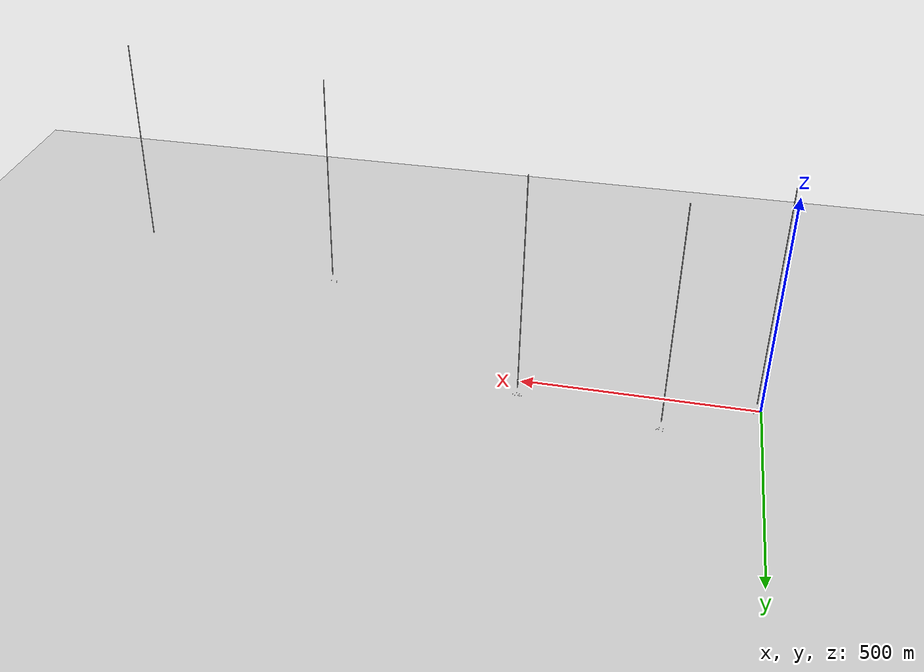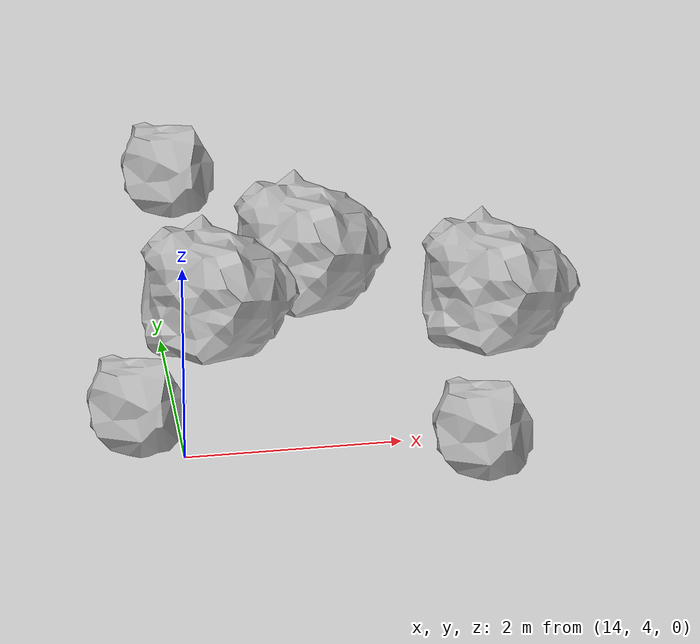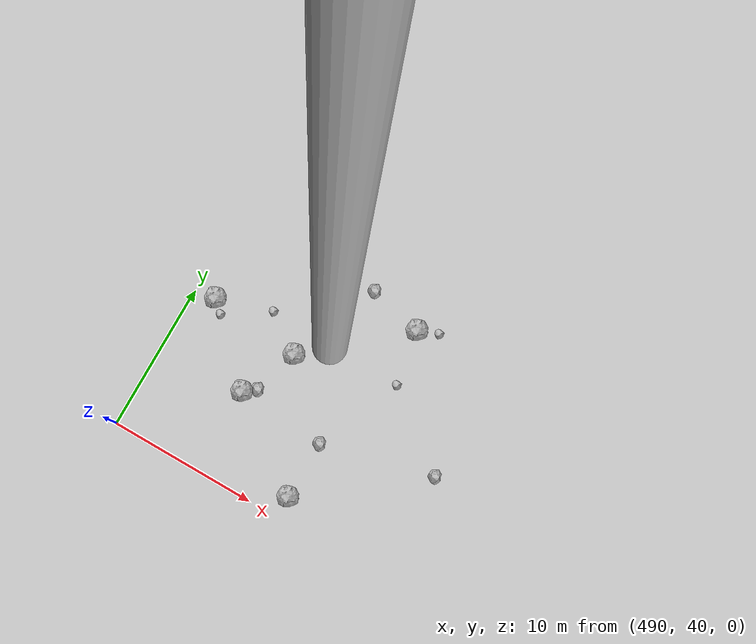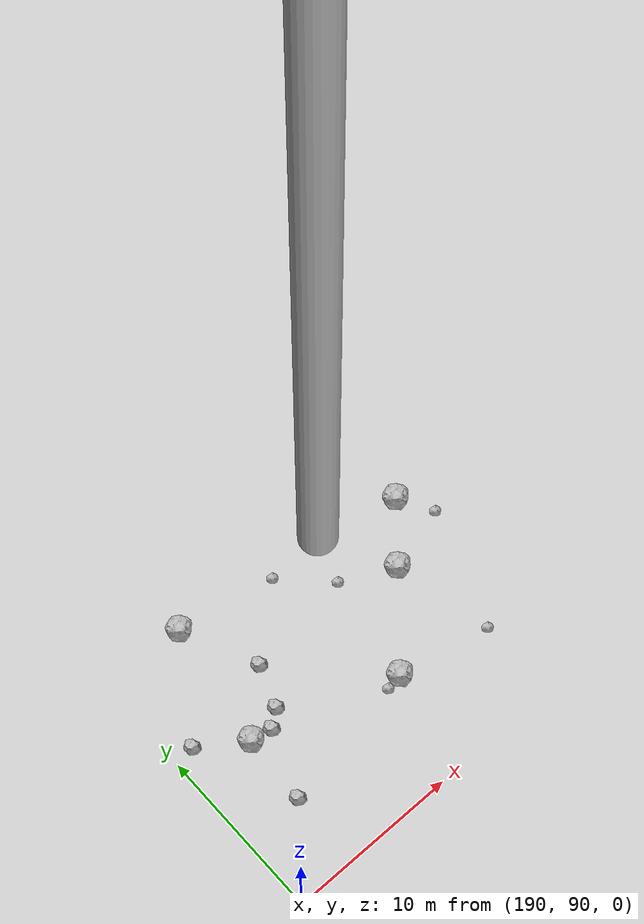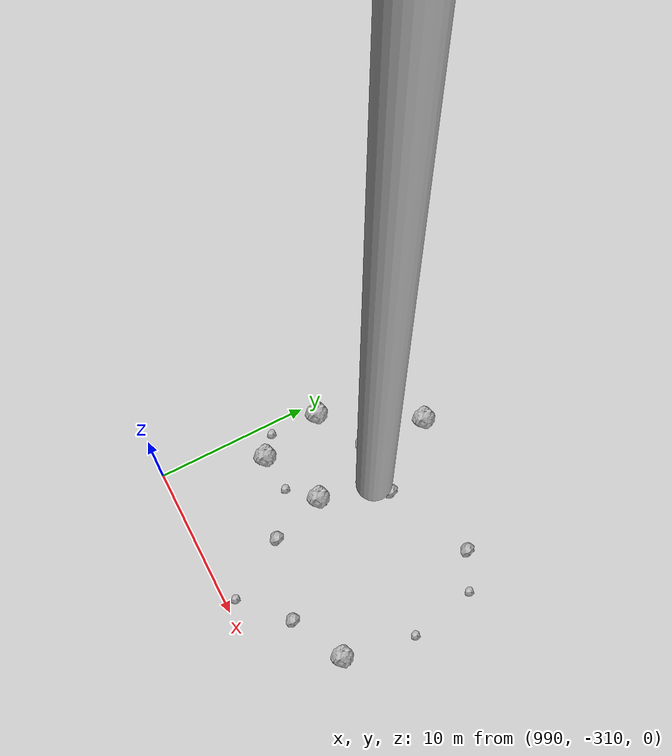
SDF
<?xml version="1.0" ?>
<sdf version="1.6">
  <world name="default">

    <include>
      <uri>model://custom_ground</uri>
    </include>

    <include>
      <uri>model://sun</uri>
    </include>

    <spherical_coordinates>
      <surface_model>EARTH_WGS84</surface_model>
      <latitude_deg>38.161479</latitude_deg>
      <longitude_deg>-122.454630</longitude_deg>
      <elevation>488.0</elevation>
      <heading_deg>90</heading_deg>
    </spherical_coordinates>

    <model name="rock1_0_0">
      <include>
        <uri>model://rock1</uri>
        <pose>15.525276351233337 6.610345197784049 0.5 0 0 0</pose>
      </include>
    </model>
    <model name="rock1_0_1">
      <include>
        <uri>model://rock1</uri>
        <pose>7.889307396194239 1.6535101761001503 0.5 0 0 0</pose>
      </include>
    </model>
    <model name="rock1_0_2">
      <include>
        <uri>model://rock1</uri>
        <pose>14.557500810803068 5.900128451390657 0.5 0 0 0</pose>
      </include>
    </model>
    <model name="rock1_0_3">
      <include>
        <uri>model://rock1</uri>
        <pose>4.454841044958093 -5.460273262258662 0.5 0 0 0</pose>
      </include>
    </model>
    <model name="rock1_0_4">
      <include>
        <uri>model://rock1</uri>
        <pose>17.189204019533292 5.696207732437664 0.5 0 0 0</pose>
      </include>
    </model>
    <model name="rock2_0_0">
      <include>
        <uri>model://rock2</uri>
        <pose>9.817750892629286 9.285022342875518 0.3 0 0 0</pose>
      </include>
    </model>
    <model name="rock2_0_1">
      <include>
        <uri>model://rock2</uri>
        <pose>14.376230154048091 8.692480028334117 0.3 0 0 0</pose>
      </include>
    </model>
    <model name="rock2_0_2">
      <include>
        <uri>model://rock2</uri>
        <pose>16.699914967752637 3.6950039231054426 0.3 0 0 0</pose>
      </include>
    </model>
    <model name="rock2_0_3">
      <include>
        <uri>model://rock2</uri>
        <pose>13.614076206944487 4.498259679579949 0.3 0 0 0</pose>
      </include>
    </model>
    <model name="rock2_0_4">
      <include>
        <uri>model://rock2</uri>
        <pose>17.242167178002994 -1.7131647837348059 0.3 0 0 0</pose>
      </include>
    </model>
    <model name="rock3_0_0">
      <include>
        <uri>model://rock3</uri>
        <pose>17.054093052975464 -2.718595696089217 0.2 0 0 0</pose>
      </include>
    </model>
    <model name="rock3_0_1">
      <include>
        <uri>model://rock3</uri>
        <pose>9.479524167503593 -5.650361893571459 0.2 0 0 0</pose>
      </include>
    </model>
    <model name="rock3_0_2">
      <include>
        <uri>model://rock3</uri>
        <pose>15.119453489097719 -4.876221867334567 0.2 0 0 0</pose>
      </include>
    </model>
    <model name="rock3_0_3">
      <include>
        <uri>model://rock3</uri>
        <pose>14.62213803138937 -0.583657245392109 0.2 0 0 0</pose>
      </include>
    </model>
    <model name="rock3_0_4">
      <include>
        <uri>model://rock3</uri>
        <pose>18.039579138454062 -2.8834141361477217 0.2 0 0 0</pose>
      </include>
    </model>
    <model name="rock1_1_0">
      <include>
        <uri>model://rock1</uri>
        <pose>208.76339692320553 103.46023592475406 0.5 0 0 0</pose>
      </include>
    </model>
    <model name="rock1_1_1">
      <include>
        <uri>model://rock1</uri>
        <pose>193.86676708528518 98.44292971892227 0.5 0 0 0</pose>
      </include>
    </model>
    <model name="rock1_1_2">
      <include>
        <uri>model://rock1</uri>
        <pose>194.98528299058512 105.64404735408536 0.5 0 0 0</pose>
      </include>
    </model>
    <model name="rock1_1_3">
      <include>
        <uri>model://rock1</uri>
        <pose>202.25160231282268 95.8726973716056 0.5 0 0 0</pose>
      </include>
    </model>
    <model name="rock1_1_4">
      <include>
        <uri>model://rock1</uri>
        <pose>206.22876945398832 100.48626914817561 0.5 0 0 0</pose>
      </include>
    </model>
    <model name="rock2_1_0">
      <include>
        <uri>model://rock2</uri>
        <pose>195.07191141554708 98.21325764203668 0.3 0 0 0</pose>
      </include>
    </model>
    <model name="rock2_1_1">
      <include>
        <uri>model://rock2</uri>
        <pose>193.61341773403993 94.43996336748611 0.3 0 0 0</pose>
      </include>
    </model>
    <model name="rock2_1_2">
      <include>
        <uri>model://rock2</uri>
        <pose>191.21346118579083 100.25042409814026 0.3 0 0 0</pose>
      </include>
    </model>
    <model name="rock2_1_3">
      <include>
        <uri>model://rock2</uri>
        <pose>196.01530567885067 98.94784353912632 0.3 0 0 0</pose>
      </include>
    </model>
    <model name="rock2_1_4">
      <include>
        <uri>model://rock2</uri>
        <pose>196.90468364780804 101.326890457727 0.3 0 0 0</pose>
      </include>
    </model>
    <model name="rock3_1_0">
      <include>
        <uri>model://rock3</uri>
        <pose>209.84783639516792 101.47365905441023 0.2 0 0 0</pose>
      </include>
    </model>
    <model name="rock3_1_1">
      <include>
        <uri>model://rock3</uri>
        <pose>203.15562408094218 101.96277792138895 0.2 0 0 0</pose>
      </include>
    </model>
    <model name="rock3_1_2">
      <include>
        <uri>model://rock3</uri>
        <pose>207.5244003804073 94.6740561443311 0.2 0 0 0</pose>
      </include>
    </model>
    <model name="rock3_1_3">
      <include>
        <uri>model://rock3</uri>
        <pose>201.22201815068615 95.6933756973475 0.2 0 0 0</pose>
      </include>
    </model>
    <model name="rock3_1_4">
      <include>
        <uri>model://rock3</uri>
        <pose>200.6342635997246 104.48315721822024 0.2 0 0 0</pose>
      </include>
    </model>
    <model name="rock1_2_0">
      <include>
        <uri>model://rock1</uri>
        <pose>495.96605698251506 45.907848134949276 0.5 0 0 0</pose>
      </include>
    </model>
    <model name="rock1_2_1">
      <include>
        <uri>model://rock1</uri>
        <pose>491.41394032007594 50.242638315654084 0.5 0 0 0</pose>
      </include>
    </model>
    <model name="rock1_2_2">
      <include>
        <uri>model://rock1</uri>
        <pose>503.7368469821653 55.06568092018414 0.5 0 0 0</pose>
      </include>
    </model>
    <model name="rock1_2_3">
      <include>
        <uri>model://rock1</uri>
        <pose>501.9957374038247 41.557806295689254 0.5 0 0 0</pose>
      </include>
    </model>
    <model name="rock1_2_4">
      <include>
        <uri>model://rock1</uri>
        <pose>497.6627395220357 49.67971401236371 0.5 0 0 0</pose>
      </include>
    </model>
    <model name="rock2_2_0">
      <include>
        <uri>model://rock2</uri>
        <pose>500.06105518421543 55.88830272456712 0.3 0 0 0</pose>
      </include>
    </model>
    <model name="rock2_2_1">
      <include>
        <uri>model://rock2</uri>
        <pose>501.9968858241438 45.530263465623726 0.3 0 0 0</pose>
      </include>
    </model>
    <model name="rock2_2_2">
      <include>
        <uri>model://rock2</uri>
        <pose>496.37086093994316 56.448164803041266 0.3 0 0 0</pose>
      </include>
    </model>
    <model name="rock2_2_3">
      <include>
        <uri>model://rock2</uri>
        <pose>496.75866859002167 46.530035043195284 0.3 0 0 0</pose>
      </include>
    </model>
    <model name="rock2_2_4">
      <include>
        <uri>model://rock2</uri>
        <pose>509.5064246247215 47.495897353208164 0.3 0 0 0</pose>
      </include>
    </model>
    <model name="rock3_2_0">
      <include>
        <uri>model://rock3</uri>
        <pose>495.0587670893363 51.385526356437325 0.2 0 0 0</pose>
      </include>
    </model>
    <model name="rock3_2_1">
      <include>
        <uri>model://rock3</uri>
        <pose>492.17703769603594 49.477065175995975 0.2 0 0 0</pose>
      </include>
    </model>
    <model name="rock3_2_2">
      <include>
        <uri>model://rock3</uri>
        <pose>499.96007906779573 55.960815477668156 0.2 0 0 0</pose>
      </include>
    </model>
    <model name="rock3_2_3">
      <include>
        <uri>model://rock3</uri>
        <pose>504.3752391402531 51.31854571479559 0.2 0 0 0</pose>
      </include>
    </model>
    <model name="rock3_2_4">
      <include>
        <uri>model://rock3</uri>
        <pose>505.07016742178814 55.58313805498231 0.2 0 0 0</pose>
      </include>
    </model>
    <model name="rock1_3_0">
      <include>
        <uri>model://rock1</uri>
        <pose>1005.8306832552398 -304.8168909426483 0.5 0 0 0</pose>
      </include>
    </model>
    <model name="rock1_3_1">
      <include>
        <uri>model://rock1</uri>
        <pose>990.8153730043484 -299.22228596097113 0.5 0 0 0</pose>
      </include>
    </model>
    <model name="rock1_3_2">
      <include>
        <uri>model://rock1</uri>
        <pose>995.8923444994103 -301.6007424113343 0.5 0 0 0</pose>
      </include>
    </model>
    <model name="rock1_3_3">
      <include>
        <uri>model://rock1</uri>
        <pose>994.2325438269559 -293.08572051920873 0.5 0 0 0</pose>
      </include>
    </model>
    <model name="rock1_3_4">
      <include>
        <uri>model://rock1</uri>
        <pose>991.8870552959357 -303.50362182003045 0.5 0 0 0</pose>
      </include>
    </model>
    <model name="rock2_3_0">
      <include>
        <uri>model://rock2</uri>
        <pose>1003.1989931664608 -294.49921462270055 0.3 0 0 0</pose>
      </include>
    </model>
    <model name="rock2_3_1">
      <include>
        <uri>model://rock2</uri>
        <pose>997.0280672012798 -305.18989767455435 0.3 0 0 0</pose>
      </include>
    </model>
    <model name="rock2_3_2">
      <include>
        <uri>model://rock2</uri>
        <pose>993.8614751580517 -297.4382777927702 0.3 0 0 0</pose>
      </include>
    </model>
    <model name="rock2_3_3">
      <include>
        <uri>model://rock2</uri>
        <pose>1002.2541855772256 -306.60148533129893 0.3 0 0 0</pose>
      </include>
    </model>
    <model name="rock2_3_4">
      <include>
        <uri>model://rock2</uri>
        <pose>997.5369292908265 -297.1838253220841 0.3 0 0 0</pose>
      </include>
    </model>
    <model name="rock3_3_0">
      <include>
        <uri>model://rock3</uri>
        <pose>1006.6453259773523 -300.02164212351505 0.2 0 0 0</pose>
      </include>
    </model>
    <model name="rock3_3_1">
      <include>
        <uri>model://rock3</uri>
        <pose>990.6668300612165 -302.47488434459115 0.2 0 0 0</pose>
      </include>
    </model>
    <model name="rock3_3_2">
      <include>
        <uri>model://rock3</uri>
        <pose>1005.676445174357 -295.6498563156597 0.2 0 0 0</pose>
      </include>
    </model>
    <model name="rock3_3_3">
      <include>
        <uri>model://rock3</uri>
        <pose>994.3598990120688 -303.2842492813833 0.2 0 0 0</pose>
      </include>
    </model>
    <model name="rock3_3_4">
      <include>
        <uri>model://rock3</uri>
        <pose>999.410995677815 -309.32341056009017 0.2 0 0 0</pose>
      </include>
    </model>
    <model name="rock1_4_0">
      <include>
        <uri>model://rock1</uri>
        <pose>1500.814382338392 -391.6840313706021 0.5 0 0 0</pose>
      </include>
    </model>
    <model name="rock1_4_1">
      <include>
        <uri>model://rock1</uri>
        <pose>1506.989941951976 -400.3285190519127 0.5 0 0 0</pose>
      </include>
    </model>
    <model name="rock1_4_2">
      <include>
        <uri>model://rock1</uri>
        <pose>1500.6024706643273 -391.06416376830254 0.5 0 0 0</pose>
      </include>
    </model>
    <model name="rock1_4_3">
      <include>
        <uri>model://rock1</uri>
        <pose>1496.7365277751037 -403.13906083531026 0.5 0 0 0</pose>
      </include>
    </model>
    <model name="rock1_4_4">
      <include>
        <uri>model://rock1</uri>
        <pose>1505.4173267426295 -398.1908137041913 0.5 0 0 0</pose>
      </include>
    </model>
    <model name="rock2_4_0">
      <include>
        <uri>model://rock2</uri>
        <pose>1504.9286808061238 -400.2671972650418 0.3 0 0 0</pose>
      </include>
    </model>
    <model name="rock2_4_1">
      <include>
        <uri>model://rock2</uri>
        <pose>1497.0187586477366 -408.8479563946773 0.3 0 0 0</pose>
      </include>
    </model>
    <model name="rock2_4_2">
      <include>
        <uri>model://rock2</uri>
        <pose>1503.3272927660898 -403.99555655291397 0.3 0 0 0</pose>
      </include>
    </model>
    <model name="rock2_4_3">
      <include>
        <uri>model://rock2</uri>
        <pose>1501.386927641655 -393.1479635811754 0.3 0 0 0</pose>
      </include>
    </model>
    <model name="rock2_4_4">
      <include>
        <uri>model://rock2</uri>
        <pose>1500.717697599203 -391.8402421825365 0.3 0 0 0</pose>
      </include>
    </model>
    <model name="rock3_4_0">
      <include>
        <uri>model://rock3</uri>
        <pose>1497.0648414388543 -402.7130484669626 0.2 0 0 0</pose>
      </include>
    </model>
    <model name="rock3_4_1">
      <include>
        <uri>model://rock3</uri>
        <pose>1500.9065578723737 -396.76313539958284 0.2 0 0 0</pose>
      </include>
    </model>
    <model name="rock3_4_2">
      <include>
        <uri>model://rock3</uri>
        <pose>1497.977606344156 -401.99189184688987 0.2 0 0 0</pose>
      </include>
    </model>
    <model name="rock3_4_3">
      <include>
        <uri>model://rock3</uri>
        <pose>1499.0344010561732 -395.6047169049784 0.2 0 0 0</pose>
      </include>
    </model>
    <model name="rock3_4_4">
      <include>
        <uri>model://rock3</uri>
        <pose>1492.3465884707973 -397.90117393613843 0.2 0 0 0</pose>
      </include>
    </model>

    <model name="cylinder_1">
      <static>true</static>
      <link name="link">
        <visual name="visual">
          <geometry>
            <cylinder>
              <radius>1</radius>
              <length>500</length>
            </cylinder>
          </geometry>
        </visual>
      </link>
      <pose>10 0 270 0 0 0</pose>
    </model>

    <model name="cylinder_2">
      <static>true</static>
      <link name="link">
        <visual name="visual">
          <geometry>
            <cylinder>
              <radius>1</radius>
              <length>500</length>
            </cylinder>
          </geometry>
        </visual>
      </link>
      <pose>200 100 270 0 0 0</pose>
    </model>

    <model name="cylinder_3">
      <static>true</static>
      <link name="link">
        <visual name="visual">
          <geometry>
            <cylinder>
              <radius>1</radius>
              <length>500</length>
            </cylinder>
          </geometry>
        </visual>
      </link>
      <pose>500 50 270 0 0 0</pose>
    </model>

    <model name="cylinder_4">
      <static>true</static>
      <link name="link">
        <visual name="visual">
          <geometry>
            <cylinder>
              <radius>1</radius>
              <length>500</length>
            </cylinder>
          </geometry>
        </visual>
      </link>
      <pose>1000 -300 270 0 0 0</pose>
    </model>

    <model name="cylinder_5">
      <static>true</static>
      <link name="link">
        <visual name="visual">
          <geometry>
            <cylinder>
              <radius>1</radius>
              <length>500</length>
            </cylinder>
          </geometry>
        </visual>
      </link>
      <pose>1500 -400 270 0 0 0</pose>
    </model>

  </world>
</sdf>

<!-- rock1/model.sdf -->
<sdf version="1.6">
  <model name="rock1">
    <static>true</static> <!-- Set to true if the model should not move -->
    <pose>0 0 0 0 0 0</pose>

    <!--z offset is 0.5 for full scale-->

    <link name="link">
      <collision name="rock1_collision">
        <geometry>
          <mesh>
            <uri>model://meshes/rock1.dae</uri>
          </mesh>
        </geometry>
      </collision>
      <visual name="rock1_visual">
        <geometry>
          <mesh>
            <uri>model://meshes/rock1.dae</uri>
          </mesh>
        </geometry>
        <material>
          <script>
            <uri>model://materials/scripts/sand_pebbles.material</uri>
            <name>custom_ground/Image</name>
          </script>
        </material>
      </visual>
    </link>
  </model>
</sdf>

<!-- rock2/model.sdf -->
<sdf version="1.6">
  <model name="rock2">
    <static>true</static> <!-- Set to true if the model should not move -->
    <pose>0 0 0 0 0 0</pose>

    <!--z offset is 0.3 for full scale-->

    <link name="link">
      <collision name="rock2_collision">
        <geometry>
          <mesh>
            <uri>model://meshes/rock2.dae</uri>
          </mesh>
        </geometry>
      </collision>
      <visual name="rock2_visual">
        <geometry>
          <mesh>
            <uri>model://meshes/rock2.dae</uri>
          </mesh>
        </geometry>
        <material>
          <script>
            <uri>model://materials/scripts/sand_pebbles.material</uri>
            <name>custom_ground/Image</name>
          </script>
        </material>
      </visual>
    </link>
  </model>
</sdf>

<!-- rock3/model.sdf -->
<sdf version="1.6">
  <model name="rock3">
    <static>true</static> <!-- Set to true if the model should not move -->
    <pose>0 0 0 0 0 0</pose>

    <!--z offset is 0.2 for full scale-->

    <link name="link">
      <collision name="rock3_collision">
        <geometry>
          <mesh>
            <uri>model://meshes/rock3.dae</uri>
          </mesh>
        </geometry>
      </collision>
      <visual name="rock3_visual">
        <geometry>
          <mesh>
            <uri>model://meshes/rock3.dae</uri>
          </mesh>
        </geometry>
        <material>
          <script>
            <uri>model://materials/scripts/sand_pebbles.material</uri>
            <name>custom_ground/Image</name>
          </script>
        </material>
      </visual>
    </link>
  </model>
</sdf>

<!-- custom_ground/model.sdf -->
<sdf version="1.6">
  <model name="custom_ground">
    <static>true</static> <!-- Ground is static and immovable -->
    <link name="ground_link">
      <pose>240 0 0 0 0 0</pose> <!-- Position and orientation relative to the world -->
      <!-- Visual Representation -->
      <visual name="ground_visual">
        <geometry>
          <plane>
            <normal>0 0 1</normal> <!-- Upward facing plane -->
            <size>500 500</size> <!-- Size of the plane -->
          </plane>
        </geometry>
        <material>
          <script>
            <uri>model://materials/scripts/sand_pebbles.material</uri>
            <name>custom_ground/Image</name>
          </script>
        </material>
      </visual>

      <!-- Collision Representation -->
      <collision name="ground_collision">
        <geometry>
          <plane>
            <normal>0 0 1</normal>
            <size>100 100</size>
          </plane>
        </geometry>
      </collision>

    </link>
  </model>
</sdf>
